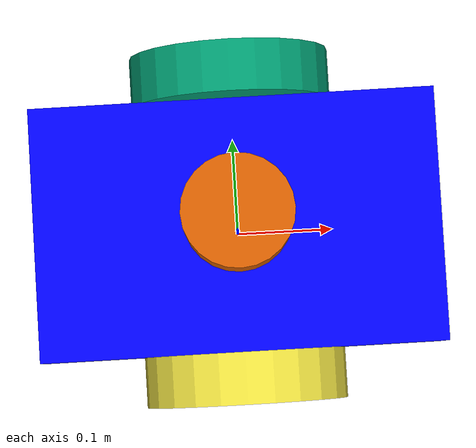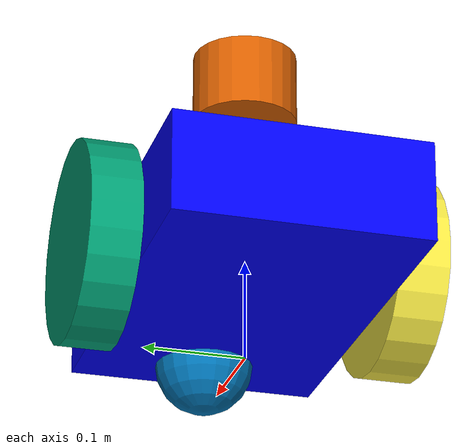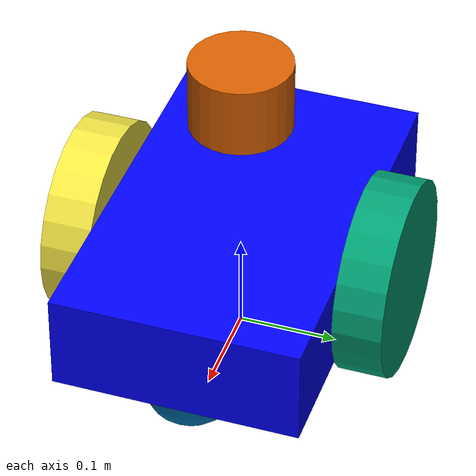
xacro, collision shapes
<?xml version="1.0"?>
<robot name="my_car" xmlns:xacro="http://www.ros.org/wiki/xacro">

  <xacro:include filename="$(find velodyne_description)/urdf/VLP-16.urdf.xacro"/>

  <link name="base_footprint" />

  <link name="base_link">
    <visual>
      <geometry><box size="0.4 0.25 0.1"/></geometry>
      <material name="blue"><color rgba="0 0 1 1"/></material>
    </visual>
    <collision>
      <geometry><box size="0.4 0.25 0.1"/></geometry>
    </collision>
    <inertial>
      <mass value="5.0"/>
      <inertia ixx="0.1" ixy="0" ixz="0" iyy="0.1" iyz="0" izz="0.1"/>
    </inertial>
  </link>

  <joint name="base_joint" type="fixed">
     <parent link="base_footprint"/>
     <child link="base_link"/>
     <origin xyz="0 0 0.1" rpy="0 0 0"/>
  </joint>

  <link name="left_wheel">
    <visual><geometry><cylinder radius="0.1" length="0.05"/></geometry></visual>
    <collision><geometry><cylinder radius="0.1" length="0.05"/></geometry></collision>
    <inertial><mass value="1.0"/><inertia ixx="0.01" ixy="0" ixz="0" iyy="0.01" iyz="0" izz="0.01"/></inertial>
  </link>
  <joint name="left_wheel_joint" type="continuous">
    <parent link="base_link"/>
    <child link="left_wheel"/>
    <origin xyz="0 0.15 0" rpy="-1.5707 0 0"/>
    <axis xyz="0 0 1"/>
  </joint>

  <link name="right_wheel">
    <visual><geometry><cylinder radius="0.1" length="0.05"/></geometry></visual>
    <collision><geometry><cylinder radius="0.1" length="0.05"/></geometry></collision>
    <inertial><mass value="1.0"/><inertia ixx="0.01" ixy="0" ixz="0" iyy="0.01" iyz="0" izz="0.01"/></inertial>
  </link>
  <joint name="right_wheel_joint" type="continuous">
    <parent link="base_link"/>
    <child link="right_wheel"/>
    <origin xyz="0 -0.15 0" rpy="-1.5707 0 0"/>
    <axis xyz="0 0 1"/>
  </joint>

  <link name="caster_wheel">
    <collision><geometry><sphere radius="0.049"/></geometry></collision>
    <inertial><mass value="0.5"/><inertia ixx="0.001" ixy="0" ixz="0" iyy="0.001" iyz="0" izz="0.001"/></inertial>
  </link>
  <joint name="caster_joint" type="fixed">
    <parent link="base_link"/>
    <child link="caster_wheel"/>
    <origin xyz="0.15 0 -0.05" rpy="0 0 0"/>
  </joint>

  <xacro:VLP-16 parent="base_link" name="velodyne" topic="/velodyne_points" hz="10" samples="440" gpu="false">
    <origin xyz="0 0 0.15" rpy="0 0 0" />
  </xacro:VLP-16>

  <gazebo>
    <plugin name="differential_drive_controller" filename="libgazebo_ros_diff_drive.so">
      <alwaysOn>true</alwaysOn>
      <updateRate>50</updateRate>
      <leftJoint>left_wheel_joint</leftJoint>
      <rightJoint>right_wheel_joint</rightJoint>
      <wheelSeparation>0.3</wheelSeparation>
      <wheelDiameter>0.2</wheelDiameter>
      <torque>20</torque>
      <commandTopic>cmd_vel</commandTopic>
      <odometryTopic>odom</odometryTopic>
      <odometryFrame>odom</odometryFrame>
      <robotBaseFrame>base_footprint</robotBaseFrame>
    </plugin>
  </gazebo>

<gazebo reference="base_link"> <gravity>true</gravity>
  <sensor name="imu_sensor" type="imu">
    <always_on>true</always_on>
    <update_rate>200</update_rate> <visualize>true</visualize>
    <topic>__default_topic__</topic>
    <plugin filename="libgazebo_ros_imu_sensor.so" name="imu_plugin">
      <topicName>/imu/data</topicName>
      <bodyName>base_link</bodyName>
      <updateRateHZ>200.0</updateRateHZ>
      <gaussianNoise>0.0</gaussianNoise>
      <xyzOffset>0 0 0</xyzOffset>
      <rpyOffset>0 0 0</rpyOffset>
      <frameName>base_link</frameName>
    </plugin>
    <pose>0 0 0 0 0 0</pose>
  </sensor>
</gazebo>

<gazebo reference="base_link">
  <sensor type="camera" name="front_camera">
    <update_rate>20.0</update_rate>
    <camera name="head">
      <horizontal_fov>1.3962634</horizontal_fov>
      <image>
        <width>640</width>
        <height>480</height>
        <format>R8G8B8</format>
      </image>
      <clip>
        <near>0.02</near>
        <far>300</far>
      </clip>
    </camera>
    <plugin name="camera_controller" filename="libgazebo_ros_camera.so">
      <alwaysOn>true</alwaysOn>
      <updateRate>0.0</updateRate>
      <cameraName>camera</cameraName>
      <imageTopicName>image_raw</imageTopicName>
      <cameraInfoTopicName>camera_info</cameraInfoTopicName>
      <frameName>base_link</frameName>
      <hackBaseline>0.07</hackBaseline>
      <distortionK1>0.0</distortionK1>
      <distortionK2>0.0</distortionK2>
      <distortionK3>0.0</distortionK3>
      <distortionT1>0.0</distortionT1>
      <distortionT2>0.0</distortionT2>
    </plugin>
  </sensor>
</gazebo>

</robot>

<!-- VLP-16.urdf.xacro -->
<robot xmlns:xacro="http://www.ros.org/wiki/xacro" name="VLP-16">
  <xacro:property name="M_PI" value="3.1415926535897931" />
  <xacro:macro name="VLP-16" params="*origin is_sim:=true parent:=base_link name:=velodyne tf_prefix:='' topic:=/velodyne_points organize_cloud:=false hz:=10 lasers:=16 samples:=1875 collision_range:=0.3 min_range:=0.0 max_range:=100.0 noise:=0.008 min_angle:=-${M_PI} max_angle:=${M_PI} gpu:=false">

    <joint name="${name}_base_mount_joint" type="fixed">
      <xacro:insert_block name="origin" />
      <parent link="${parent}"/>
      <child link="${name}_base_link"/>
    </joint>

    <link name="${name}_base_link">
      <inertial>
        <mass value="0.83"/>
        <origin xyz="0 0 0.03585"/>
        <inertia ixx="${(0.83 * (3.0*0.0516*0.0516 + 0.0717*0.0717)) / 12.0}" ixy="0" ixz="0"
          iyy="${(0.83 * (3.0*0.0516*0.0516 + 0.0717*0.0717)) / 12.0}" iyz="0"
          izz="${0.5 * 0.83 * (0.0516*0.0516)}"/>
      </inertial>
      <visual>
        <geometry>
          <mesh filename="package://velodyne_description/meshes/VLP16_base_1.dae" />
        </geometry>
      </visual>
      <visual>
        <geometry>
          <mesh filename="package://velodyne_description/meshes/VLP16_base_2.dae" />
        </geometry>
      </visual>
      <collision>
        <origin rpy="0 0 0" xyz="0 0 0.03585"/>
        <geometry>
          <cylinder radius="0.0516" length="0.0717"/>
        </geometry>
      </collision>
    </link>

    <joint name="${name}_base_scan_joint" type="fixed" >
      <origin xyz="0 0 0.0377" rpy="0 0 0" />
      <parent link="${name}_base_link" />
      <child link="${name}"/>
    </joint>

    <link name="${name}">
      <inertial>
        <mass value="0.01"/>
        <origin xyz="0 0 0"/>
        <inertia ixx="1e-7" ixy="0" ixz="0" iyy="1e-7" iyz="0" izz="1e-7"/>
      </inertial>
      <visual>
        <origin xyz="0 0 -0.0377" />
        <geometry>
          <mesh filename="package://velodyne_description/meshes/VLP16_scan.dae" />
        </geometry>
      </visual>
      <collision>
        <geometry>
          <sphere radius="0"/>
        </geometry>
      </collision>
    </link>

    <!-- Gazebo requires the velodyne_gazebo_plugins package -->
    <xacro:if value="${is_sim}">
        <gazebo reference="${name}">
            <xacro:if value="${gpu}">
                <sensor type="gpu_ray" name="${name}-VLP16">
                <pose>0 0 0 0 0 0</pose>
                <visualize>false</visualize>
                <update_rate>${hz}</update_rate>
                <ray>
                    <scan>
                    <horizontal>
                        <samples>${samples}</samples>
                        <resolution>1</resolution>
                        <min_angle>${min_angle}</min_angle>
                        <max_angle>${max_angle}</max_angle>
                    </horizontal>
                    <vertical>
                        <samples>${lasers}</samples>
                        <resolution>1</resolution>
                        <min_angle>-${15.0*M_PI/180.0}</min_angle>
                        <max_angle> ${15.0*M_PI/180.0}</max_angle>
                    </vertical>
                    </scan>
                    <range>
                    <min>${collision_range}</min>
                    <max>${max_range+1}</max>
                    <resolution>0.001</resolution>
                    </range>
                    <noise>
                    <type>gaussian</type>
                    <mean>0.0</mean>
                    <stddev>0.0</stddev>
                    </noise>
                </ray>
                <plugin name="gazebo_ros_laser_controller" filename="libgazebo_ros_velodyne_laser.so">
                    <ros>
                    <namespace>/${name}</namespace>
                    <remapping>~/out:=${topic}</remapping>
                    </ros>
                    <tf_prefix>${tf_prefix}</tf_prefix>
                    <frame_name>${name}</frame_name>
                    <organize_cloud>${organize_cloud}</organize_cloud>
                    <min_range>${min_range}</min_range>
                    <max_range>${max_range}</max_range>
                    <gaussian_noise>${noise}</gaussian_noise>
                </plugin>
                </sensor>
            </xacro:if>
            <xacro:unless value="${gpu}">
                <sensor type="ray" name="${name}-VLP16">
                <pose>0 0 0 0 0 0</pose>
                <visualize>false</visualize>
                <update_rate>${hz}</update_rate>
                <ray>
                    <scan>
                    <horizontal>
                        <samples>${samples}</samples>
                        <resolution>1</resolution>
                        <min_angle>${min_angle}</min_angle>
                        <max_angle>${max_angle}</max_angle>
                    </horizontal>
                    <vertical>
                        <samples>${lasers}</samples>
                        <resolution>1</resolution>
                        <min_angle>-${15.0*M_PI/180.0}</min_angle>
                        <max_angle> ${15.0*M_PI/180.0}</max_angle>
                    </vertical>
                    </scan>
                    <range>
                    <min>${collision_range}</min>
                    <max>${max_range+1}</max>
                    <resolution>0.001</resolution>
                    </range>
                    <noise>
                    <type>gaussian</type>
                    <mean>0.0</mean>
                    <stddev>0.0</stddev>
                    </noise>
                </ray>
                <plugin name="gazebo_ros_laser_controller" filename="libgazebo_ros_velodyne_laser.so">
                    <ros>
                    <namespace>/${name}</namespace>
                    <remapping>~/out:=${topic}</remapping>
                    </ros>
                    <tf_prefix>${tf_prefix}</tf_prefix>
                    <frame_name>${name}</frame_name>
                    <organize_cloud>${organize_cloud}</organize_cloud>
                    <min_range>${min_range}</min_range>
                    <max_range>${max_range}</max_range>
                    <gaussian_noise>${noise}</gaussian_noise>
                </plugin>
                </sensor>
            </xacro:unless>
        </gazebo>
    </xacro:if>

  </xacro:macro>
</robot>
